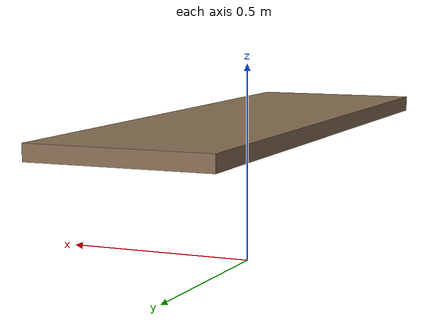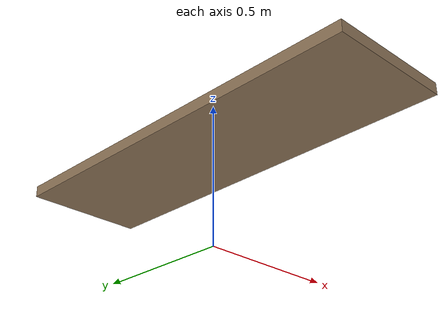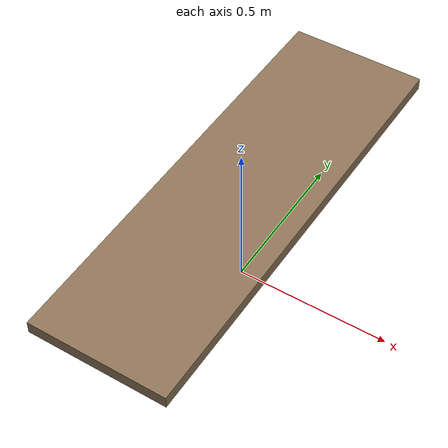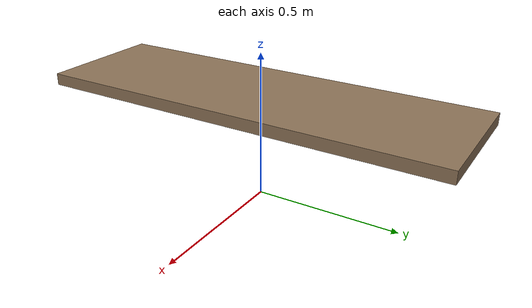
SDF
<?xml version="1.0"?>
<sdf version="1.9">
  <model name="beverage_table">
    <static>true</static>
    <link name="table_link">
      <pose>0 0 0.35 0 0 0</pose>
      <visual name="top_visual">
        <geometry>
          <box>
            <size>0.44 1.40 0.04</size>
          </box>
        </geometry>
        <material>
          <ambient>0.55 0.45 0.34 1</ambient>
          <diffuse>0.55 0.45 0.34 1</diffuse>
        </material>
      </visual>
      <collision name="top_collision">
        <geometry>
          <box>
            <size>0.44 1.40 0.04</size>
          </box>
        </geometry>
      </collision>
    </link>
  </model>
</sdf>
